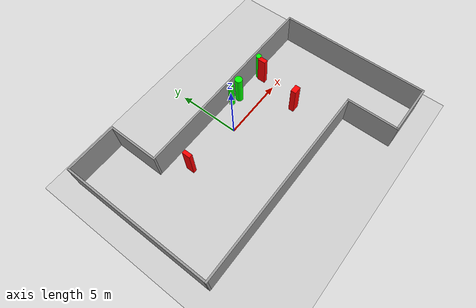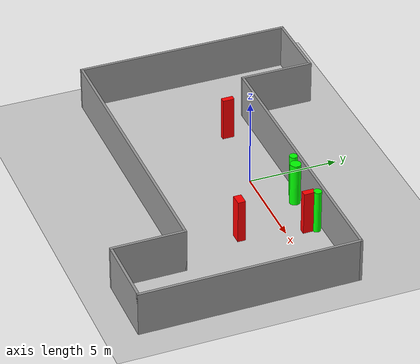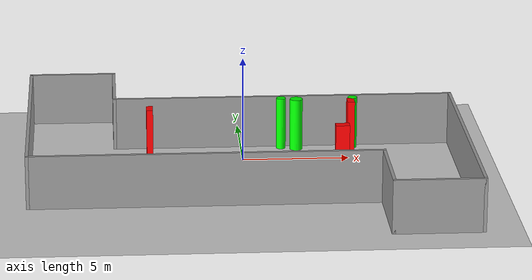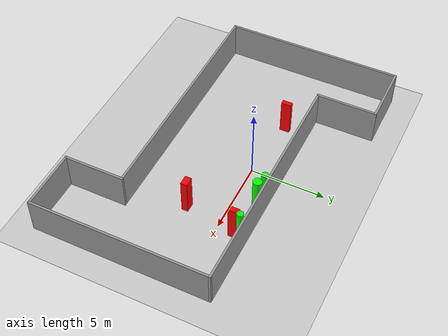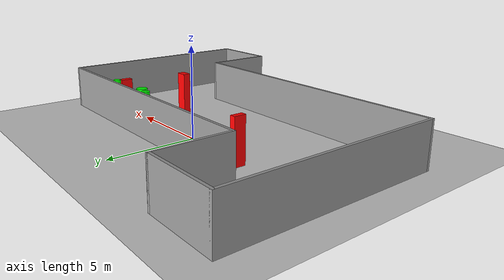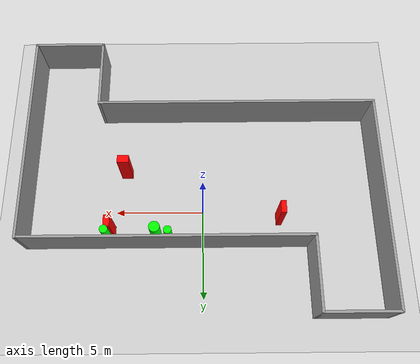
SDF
<sdf version="1.7">
 <world name="default">
  <light name="sun" type="directional">
   <pose>0 0 10 0 -0 0</pose>
   <diffuse>0.8 0.8 0.8 1</diffuse>
   <specular>0.2 0.2 0.2 1</specular>
   <attenuation>
    <range>1000</range>
    <constant>0.9</constant>
    <linear>0.01</linear>
    <quadratic>0.001</quadratic>
   </attenuation>
   <direction>-0.5 0.1 -0.9</direction>
   <spot><inner_angle>0</inner_angle><outer_angle>0</outer_angle><falloff>0</falloff></spot>
  </light>
  <model name="ground_plane">
   <static>1</static>
   <link name="link">
    <collision name="collision">
     <geometry><plane><normal>0 0 1</normal><size>100 100</size></plane></geometry>
     <surface>
      <contact><collide_bitmask>65535</collide_bitmask></contact>
      <friction><ode><mu>100</mu><mu2>50</mu2></ode></friction>
     </surface>
    </collision>
    <visual name="visual">
     <cast_shadows>0</cast_shadows>
     <geometry><plane><normal>0 0 1</normal><size>100 100</size></plane></geometry>
     <material>
      <script><uri>file://media/materials/scripts/gazebo.material</uri><name>Gazebo/Grey</name></script>
     </material>
    </visual>
   </link>
  </model>
  <gravity>0 0 -9.8</gravity>
  <magnetic_field>6e-06 2.3e-05 -4.2e-05</magnetic_field>
  <atmosphere type="adiabatic"/>
  <physics type="ode">
   <max_step_size>0.001</max_step_size>
   <real_time_factor>1</real_time_factor>
   <real_time_update_rate>1000</real_time_update_rate>
  </physics>
  <scene><ambient>0.4 0.4 0.4 1</ambient><background>0.7 0.7 0.7 1</background><shadows>1</shadows></scene>
  <spherical_coordinates>
   <surface_model>EARTH_WGS84</surface_model>
   <latitude_deg>0</latitude_deg>
   <longitude_deg>0</longitude_deg>
   <elevation>0</elevation>
   <heading_deg>0</heading_deg>
  </spherical_coordinates>
  <model name="my_base_walls">
   <link name="Wall_13">
    <collision name="Wall_13_Collision">
     <geometry><box><size>12.15 0.15 2.5</size></box></geometry>
     <pose>0 0 1.25 0 -0 0</pose>
    </collision>
    <visual name="Wall_13_Visual">
     <pose>0 0 1.25 0 -0 0</pose>
     <geometry><box><size>12.15 0.15 2.5</size></box></geometry>
     <material>
      <script><uri>file://media/materials/scripts/gazebo.material</uri><name>Gazebo/Grey</name></script>
      <ambient>1 1 1 1</ambient>
     </material>
     <meta><layer>0</layer></meta>
    </visual>
    <pose>10 -2 0 0 -0 1.5708</pose>
   </link>
   <link name="Wall_15">
    <collision name="Wall_15_Collision">
     <geometry><box><size>16.15 0.15 2.5</size></box></geometry>
     <pose>0 0 1.25 0 -0 0</pose>
    </collision>
    <visual name="Wall_15_Visual">
     <pose>0 0 1.25 0 -0 0</pose>
     <geometry><box><size>16.15 0.15 2.5</size></box></geometry>
     <material>
      <script><uri>file://media/materials/scripts/gazebo.material</uri><name>Gazebo/Grey</name></script>
      <ambient>1 1 1 1</ambient>
     </material>
     <meta><layer>0</layer></meta>
    </visual>
    <pose>2 4 0 0 -0 3.14159</pose>
   </link>
   <link name="Wall_17">
    <collision name="Wall_17_Collision">
     <geometry><box><size>4.15 0.15 2.5</size></box></geometry>
     <pose>0 0 1.25 0 -0 0</pose>
    </collision>
    <visual name="Wall_17_Visual">
     <pose>0 0 1.25 0 -0 0</pose>
     <geometry><box><size>4.15 0.15 2.5</size></box></geometry>
     <material>
      <script><uri>file://media/materials/scripts/gazebo.material</uri><name>Gazebo/Grey</name></script>
      <ambient>1 1 1 1</ambient>
     </material>
     <meta><layer>0</layer></meta>
    </visual>
    <pose>6 -6 0 0 -0 -1.5708</pose>
   </link>
   <link name="Wall_19">
    <collision name="Wall_19_Collision">
     <geometry><box><size>12.15 0.15 2.5</size></box></geometry>
     <pose>0 0 1.25 0 -0 0</pose>
    </collision>
    <visual name="Wall_19_Visual">
     <pose>0 0 1.25 0 -0 0</pose>
     <geometry><box><size>12.15 0.15 2.5</size></box></geometry>
     <material>
      <script><uri>file://media/materials/scripts/gazebo.material</uri><name>Gazebo/Grey</name></script>
      <ambient>1 1 1 1</ambient>
     </material>
     <meta><layer>0</layer></meta>
    </visual>
    <pose>-10 2 0 0 -0 1.5708</pose>
   </link>
   <link name="Wall_21">
    <collision name="Wall_21_Collision">
     <geometry><box><size>4.15 0.15 2.5</size></box></geometry>
     <pose>0 0 1.25 0 -0 0</pose>
    </collision>
    <visual name="Wall_21_Visual">
     <pose>0 0 1.25 0 -0 0</pose>
     <geometry><box><size>4.15 0.15 2.5</size></box></geometry>
     <material>
      <script><uri>file://media/materials/scripts/gazebo.material</uri><name>Gazebo/Grey</name></script>
      <ambient>1 1 1 1</ambient>
     </material>
     <meta><layer>0</layer></meta>
    </visual>
    <pose>-8 8 0 0 -0 0</pose>
   </link>
   <link name="Wall_23">
    <collision name="Wall_23_Collision">
     <geometry><box><size>4.15 0.15 2.5</size></box></geometry>
     <pose>0 0 1.25 0 -0 0</pose>
    </collision>
    <visual name="Wall_23_Visual">
     <pose>0 0 1.25 0 -0 0</pose>
     <geometry><box><size>4.15 0.15 2.5</size></box></geometry>
     <material>
      <script><uri>file://media/materials/scripts/gazebo.material</uri><name>Gazebo/Grey</name></script>
      <ambient>1 1 1 1</ambient>
     </material>
     <meta><layer>0</layer></meta>
    </visual>
    <pose>-6 6 0 0 -0 -1.5708</pose>
   </link>
   <link name="Wall_25">
    <collision name="Wall_25_Collision">
     <geometry><box><size>4.15 0.15 2.5</size></box></geometry>
     <pose>0 0 1.25 0 -0 0</pose>
    </collision>
    <visual name="Wall_25_Visual">
     <pose>0 0 1.25 0 -0 0</pose>
     <geometry><box><size>4.15 0.15 2.5</size></box></geometry>
     <material>
      <script><uri>file://media/materials/scripts/gazebo.material</uri><name>Gazebo/Grey</name></script>
      <ambient>1 1 1 1</ambient>
     </material>
     <meta><layer>0</layer></meta>
    </visual>
    <pose>8 -8 0 0 -0 0</pose>
   </link>
   <link name="Wall_9">
    <collision name="Wall_9_Collision">
     <geometry><box><size>16.15 0.15 2.5</size></box></geometry>
     <pose>0 0 1.25 0 -0 0</pose>
    </collision>
    <visual name="Wall_9_Visual">
     <pose>0 0 1.25 0 -0 0</pose>
     <geometry><box><size>16.15 0.15 2.5</size></box></geometry>
     <material>
      <script><uri>file://media/materials/scripts/gazebo.material</uri><name>Gazebo/Grey</name></script>
      <ambient>1 1 1 1</ambient>
     </material>
     <meta><layer>0</layer></meta>
    </visual>
    <pose>-2 -4 0 0 -0 3.14159</pose>
   </link>
   <static>1</static>
   <pose>-0 -2 0 0 -0 0</pose>
  </model>
  <model name="cylinder1">
   <static>1</static>
   <link name="link">
    <inertial>
     <mass>1</mass>
     <inertia><ixx>0.5</ixx><ixy>0</ixy><ixz>0</ixz><iyy>0.5</iyy><iyz>0</iyz><izz>1</izz></inertia>
    </inertial>
    <collision name="collision">
     <geometry><cylinder><radius>0.22256123028947764</radius><length>2.5</length></cylinder></geometry>
    </collision>
    <visual name="visual">
     <geometry><cylinder><radius>0.22256123028947764</radius><length>2.5</length></cylinder></geometry>
     <material>
      <ambient>0 1 0 1</ambient>
      <diffuse>0 1 0 1</diffuse>
      <specular>0.1 0.1 0.1 1</specular>
      <emissive>0 0 0 0</emissive>
     </material>
    </visual>
   </link>
   <pose>5.309713463575422 1.6192678902367312 1.25 0 0 0</pose>
  </model>
  <model name="cylinder2">
   <static>1</static>
   <link name="link">
    <inertial>
     <mass>1</mass>
     <inertia><ixx>0.5</ixx><ixy>0</ixy><ixz>0</ixz><iyy>0.5</iyy><iyz>0</iyz><izz>1</izz></inertia>
    </inertial>
    <collision name="collision">
     <geometry><cylinder><radius>0.22013804185724628</radius><length>2.5</length></cylinder></geometry>
    </collision>
    <visual name="visual">
     <geometry><cylinder><radius>0.22013804185724628</radius><length>2.5</length></cylinder></geometry>
     <material>
      <ambient>0 1 0 1</ambient>
      <diffuse>0 1 0 1</diffuse>
      <specular>0.1 0.1 0.1 1</specular>
      <emissive>0 0 0 0</emissive>
     </material>
    </visual>
   </link>
   <pose>1.9105766813828096 1.6826280326504657 1.25 0 0 0</pose>
  </model>
  <model name="cylinder3">
   <static>1</static>
   <link name="link">
    <inertial>
     <mass>1</mass>
     <inertia><ixx>0.5</ixx><ixy>0</ixy><ixz>0</ixz><iyy>0.5</iyy><iyz>0</iyz><izz>1</izz></inertia>
    </inertial>
    <collision name="collision">
     <geometry><cylinder><radius>0.30007191305428693</radius><length>2.5</length></cylinder></geometry>
    </collision>
    <visual name="visual">
     <geometry><cylinder><radius>0.30007191305428693</radius><length>2.5</length></cylinder></geometry>
     <material>
      <ambient>0 1 0 1</ambient>
      <diffuse>0 1 0 1</diffuse>
      <specular>0.1 0.1 0.1 1</specular>
      <emissive>0 0 0 0</emissive>
     </material>
    </visual>
   </link>
   <pose>2.6211566254587453 1.509054392401696 1.25 0 0 0</pose>
  </model>
  <model name="box1">
   <static>1</static>
   <link name="link">
    <inertial>
     <mass>1</mass>
     <inertia><ixx>0.083</ixx><ixy>0</ixy><ixz>0</ixz><iyy>0.083</iyy><iyz>0</iyz><izz>0.083</izz></inertia>
    </inertial>
    <collision name="collision">
     <geometry><box><size>0.3007919672971204 0.6641859741869013 2.5</size></box></geometry>
    </collision>
    <visual name="visual">
     <geometry><box><size>0.3007919672971204 0.6641859741869013 2.5</size></box></geometry>
     <material>
      <ambient>1 0 0 1</ambient>
      <diffuse>1 0 0 1</diffuse>
      <specular>0.1 0.1 0.1 1</specular>
      <emissive>0 0 0 0</emissive>
     </material>
    </visual>
    <sensor name="my_contact" type="contact">
     <contact><collision>box_collision</collision><topic>__default_topic__</topic></contact>
    </sensor>
   </link>
   <pose>-4.372660234406078 0.44487637043617934 1.25 0 0 0</pose>
  </model>
  <model name="box2">
   <static>1</static>
   <link name="link">
    <inertial>
     <mass>1</mass>
     <inertia><ixx>0.083</ixx><ixy>0</ixy><ixz>0</ixz><iyy>0.083</iyy><iyz>0</iyz><izz>0.083</izz></inertia>
    </inertial>
    <collision name="collision">
     <geometry><box><size>0.34029257720452205 0.6524709358839041 2.5</size></box></geometry>
    </collision>
    <visual name="visual">
     <geometry><box><size>0.34029257720452205 0.6524709358839041 2.5</size></box></geometry>
     <material>
      <ambient>1 0 0 1</ambient>
      <diffuse>1 0 0 1</diffuse>
      <specular>0.1 0.1 0.1 1</specular>
      <emissive>0 0 0 0</emissive>
     </material>
    </visual>
    <sensor name="my_contact" type="contact">
     <contact><collision>box_collision</collision><topic>__default_topic__</topic></contact>
    </sensor>
   </link>
   <pose>5.185911229433177 1.1621461708257375 1.25 0 0 0</pose>
  </model>
  <model name="box3">
   <static>1</static>
   <link name="link">
    <inertial>
     <mass>1</mass>
     <inertia><ixx>0.083</ixx><ixy>0</ixy><ixz>0</ixz><iyy>0.083</iyy><iyz>0</iyz><izz>0.083</izz></inertia>
    </inertial>
    <collision name="collision">
     <geometry><box><size>0.6420388276481483 0.42890077243493324 2.5</size></box></geometry>
    </collision>
    <visual name="visual">
     <geometry><box><size>0.6420388276481483 0.42890077243493324 2.5</size></box></geometry>
     <material>
      <ambient>1 0 0 1</ambient>
      <diffuse>1 0 0 1</diffuse>
      <specular>0.1 0.1 0.1 1</specular>
      <emissive>0 0 0 0</emissive>
     </material>
    </visual>
    <sensor name="my_contact" type="contact">
     <contact><collision>box_collision</collision><topic>__default_topic__</topic></contact>
    </sensor>
   </link>
   <pose>4.4596133072711766 -2.406364423178591 1.25 0 0 0</pose>
  </model>
 </world>
</sdf>
